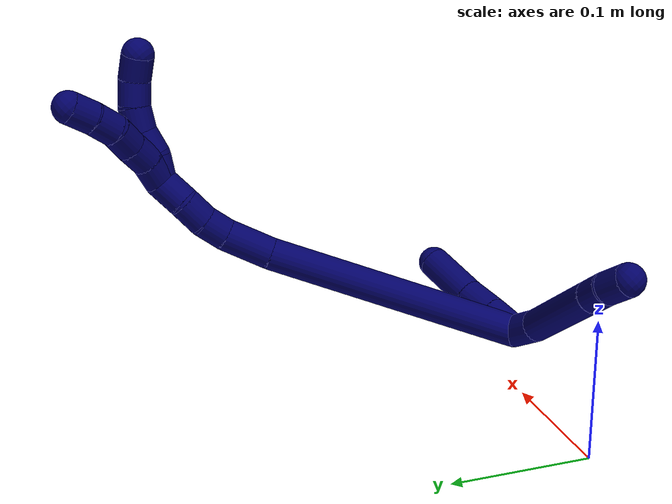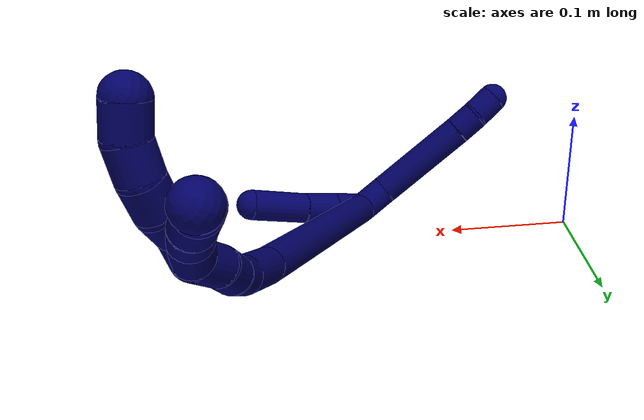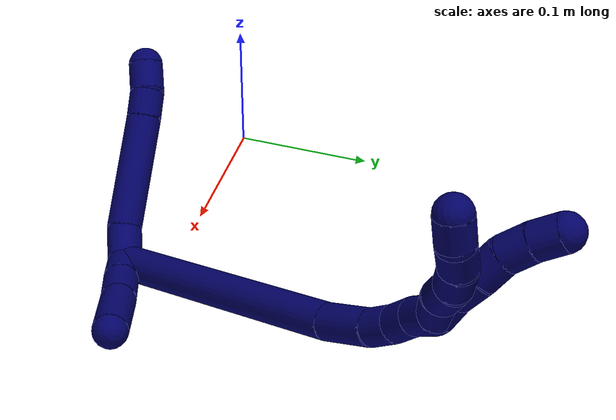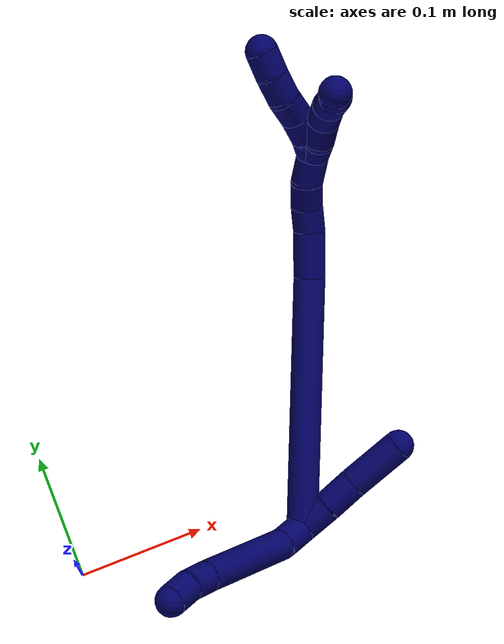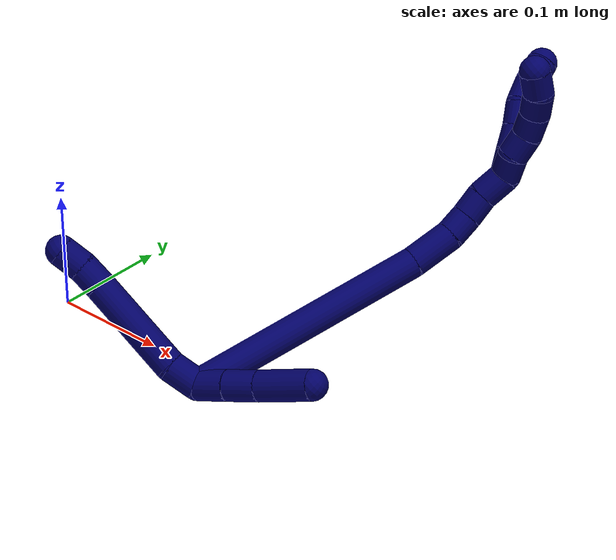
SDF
<sdf version="1.7">
 <world name="default">
  <model name="7">
   <static>0</static>
   <link name="7">
    <collision name="collision-cylinder-e_1_2_8">
     <pose>-0.007866 -0.009795 -0.002953 1.86364 -0.655453 -0.858335</pose>
     <geometry><cylinder><radius>0.0125</radius><length>0.025809</length></cylinder></geometry>
     <surface>
      <friction><ode><mu>1.16</mu><mu2>1.16</mu2><slip1>0</slip1><slip2>0</slip2></ode></friction>
      <contact><ode><kp>1e+06</kp><kd>1</kd><max_vel>0</max_vel><min_depth>0.001</min_depth></ode></contact>
     </surface>
    </collision>
    <visual name="visual-cylinder-e_1_2_8">
     <pose>-0.007866 -0.009795 -0.002953 1.86364 -0.655453 -0.858335</pose>
     <geometry><cylinder><radius>0.0125</radius><length>0.025809</length></cylinder></geometry>
     <material><ambient>0.003922 0 0.403922 1</ambient></material>
    </visual>
    <collision name="collision-cylinder-e_2_8_9">
     <pose>-0.045767 -0.047983 -0.006757 1.60072 -0.813282 -0.835253</pose>
     <geometry><cylinder><radius>0.0125</radius><length>0.082682</length></cylinder></geometry>
     <surface>
      <friction><ode><mu>1.16</mu><mu2>1.16</mu2><slip1>0</slip1><slip2>0</slip2></ode></friction>
      <contact><ode><kp>1e+06</kp><kd>1</kd><max_vel>0</max_vel><min_depth>0.001</min_depth></ode></contact>
     </surface>
    </collision>
    <visual name="visual-cylinder-e_2_8_9">
     <pose>-0.045767 -0.047983 -0.006757 1.60072 -0.813282 -0.835253</pose>
     <geometry><cylinder><radius>0.0125</radius><length>0.082682</length></cylinder></geometry>
     <material><ambient>0.003922 0 0.403922 1</ambient></material>
    </visual>
    <collision name="collision-cylinder-e_3_9_10">
     <pose>-0.082833 -0.083598 -0.007978 1.62225 -0.771219 -0.807761</pose>
     <geometry><cylinder><radius>0.0125</radius><length>0.02017</length></cylinder></geometry>
     <surface>
      <friction><ode><mu>1.16</mu><mu2>1.16</mu2><slip1>0</slip1><slip2>0</slip2></ode></friction>
      <contact><ode><kp>1e+06</kp><kd>1</kd><max_vel>0</max_vel><min_depth>0.001</min_depth></ode></contact>
     </surface>
    </collision>
    <visual name="visual-cylinder-e_3_9_10">
     <pose>-0.082833 -0.083598 -0.007978 1.62225 -0.771219 -0.807761</pose>
     <geometry><cylinder><radius>0.0125</radius><length>0.02017</length></cylinder></geometry>
     <material><ambient>0.003922 0 0.403922 1</ambient></material>
    </visual>
    <collision name="collision-cylinder-e_4_10_6">
     <pose>-0.09604 -0.099337 -0.010121 1.77578 -0.617518 -0.747343</pose>
     <geometry><cylinder><radius>0.0125</radius><length>0.021339</length></cylinder></geometry>
     <surface>
      <friction><ode><mu>1.16</mu><mu2>1.16</mu2><slip1>0</slip1><slip2>0</slip2></ode></friction>
      <contact><ode><kp>1e+06</kp><kd>1</kd><max_vel>0</max_vel><min_depth>0.001</min_depth></ode></contact>
     </surface>
    </collision>
    <visual name="visual-cylinder-e_4_10_6">
     <pose>-0.09604 -0.099337 -0.010121 1.77578 -0.617518 -0.747343</pose>
     <geometry><cylinder><radius>0.0125</radius><length>0.021339</length></cylinder></geometry>
     <material><ambient>0.003922 0 0.403922 1</ambient></material>
    </visual>
    <collision name="collision-cylinder-e_1_2_11">
     <pose>0.007798 0.003212 0.010212 -0.304677 0.629552 -0.099895</pose>
     <geometry><cylinder><radius>0.0125</radius><length>0.026489</length></cylinder></geometry>
     <surface>
      <friction><ode><mu>1.16</mu><mu2>1.16</mu2><slip1>0</slip1><slip2>0</slip2></ode></friction>
      <contact><ode><kp>1e+06</kp><kd>1</kd><max_vel>0</max_vel><min_depth>0.001</min_depth></ode></contact>
     </surface>
    </collision>
    <visual name="visual-cylinder-e_1_2_11">
     <pose>0.007798 0.003212 0.010212 -0.304677 0.629552 -0.099895</pose>
     <geometry><cylinder><radius>0.0125</radius><length>0.026489</length></cylinder></geometry>
     <material><ambient>0.003922 0 0.403922 1</ambient></material>
    </visual>
    <collision name="collision-cylinder-e_2_11_12">
     <pose>0.023356 0.01022 0.031003 -0.344587 0.604282 -0.108371</pose>
     <geometry><cylinder><radius>0.0125</radius><length>0.027316</length></cylinder></geometry>
     <surface>
      <friction><ode><mu>1.16</mu><mu2>1.16</mu2><slip1>0</slip1><slip2>0</slip2></ode></friction>
      <contact><ode><kp>1e+06</kp><kd>1</kd><max_vel>0</max_vel><min_depth>0.001</min_depth></ode></contact>
     </surface>
    </collision>
    <visual name="visual-cylinder-e_2_11_12">
     <pose>0.023356 0.01022 0.031003 -0.344587 0.604282 -0.108371</pose>
     <geometry><cylinder><radius>0.0125</radius><length>0.027316</length></cylinder></geometry>
     <material><ambient>0.003922 0 0.403922 1</ambient></material>
    </visual>
    <collision name="collision-cylinder-e_3_12_5">
     <pose>0.044496 0.01874 0.059808 -0.253615 0.617802 -0.081324</pose>
     <geometry><cylinder><radius>0.0125</radius><length>0.046195</length></cylinder></geometry>
     <surface>
      <friction><ode><mu>1.16</mu><mu2>1.16</mu2><slip1>0</slip1><slip2>0</slip2></ode></friction>
      <contact><ode><kp>1e+06</kp><kd>1</kd><max_vel>0</max_vel><min_depth>0.001</min_depth></ode></contact>
     </surface>
    </collision>
    <visual name="visual-cylinder-e_3_12_5">
     <pose>0.044496 0.01874 0.059808 -0.253615 0.617802 -0.081324</pose>
     <geometry><cylinder><radius>0.0125</radius><length>0.046195</length></cylinder></geometry>
     <material><ambient>0.003922 0 0.403922 1</ambient></material>
    </visual>
    <collision name="collision-cylinder-e_1_2_13">
     <pose>-0.018742 0.045028 0.08599 -0.48238 -0.190733 0.04705</pose>
     <geometry><cylinder><radius>0.0125</radius><length>0.197718</length></cylinder></geometry>
     <surface>
      <friction><ode><mu>1.16</mu><mu2>1.16</mu2><slip1>0</slip1><slip2>0</slip2></ode></friction>
      <contact><ode><kp>1e+06</kp><kd>1</kd><max_vel>0</max_vel><min_depth>0.001</min_depth></ode></contact>
     </surface>
    </collision>
    <visual name="visual-cylinder-e_1_2_13">
     <pose>-0.018742 0.045028 0.08599 -0.48238 -0.190733 0.04705</pose>
     <geometry><cylinder><radius>0.0125</radius><length>0.197718</length></cylinder></geometry>
     <material><ambient>0.003922 0 0.403922 1</ambient></material>
    </visual>
    <collision name="collision-cylinder-e_2_13_14">
     <pose>-0.041966 0.096616 0.188913 -0.369607 -0.24202 0.045457</pose>
     <geometry><cylinder><radius>0.0125</radius><length>0.037407</length></cylinder></geometry>
     <surface>
      <friction><ode><mu>1.16</mu><mu2>1.16</mu2><slip1>0</slip1><slip2>0</slip2></ode></friction>
      <contact><ode><kp>1e+06</kp><kd>1</kd><max_vel>0</max_vel><min_depth>0.001</min_depth></ode></contact>
     </surface>
    </collision>
    <visual name="visual-cylinder-e_2_13_14">
     <pose>-0.041966 0.096616 0.188913 -0.369607 -0.24202 0.045457</pose>
     <geometry><cylinder><radius>0.0125</radius><length>0.037407</length></cylinder></geometry>
     <material><ambient>0.003922 0 0.403922 1</ambient></material>
    </visual>
    <collision name="collision-cylinder-e_3_14_15">
     <pose>-0.049912 0.104769 0.215171 -0.169241 -0.350959 0.030076</pose>
     <geometry><cylinder><radius>0.0125</radius><length>0.02015</length></cylinder></geometry>
     <surface>
      <friction><ode><mu>1.16</mu><mu2>1.16</mu2><slip1>0</slip1><slip2>0</slip2></ode></friction>
      <contact><ode><kp>1e+06</kp><kd>1</kd><max_vel>0</max_vel><min_depth>0.001</min_depth></ode></contact>
     </surface>
    </collision>
    <visual name="visual-cylinder-e_3_14_15">
     <pose>-0.049912 0.104769 0.215171 -0.169241 -0.350959 0.030076</pose>
     <geometry><cylinder><radius>0.0125</radius><length>0.02015</length></cylinder></geometry>
     <material><ambient>0.003922 0 0.403922 1</ambient></material>
    </visual>
    <collision name="collision-cylinder-e_4_15_16">
     <pose>-0.056179 0.106101 0.234454 0.026238 -0.274294 -0.003621</pose>
     <geometry><cylinder><radius>0.0125</radius><length>0.020695</length></cylinder></geometry>
     <surface>
      <friction><ode><mu>1.16</mu><mu2>1.16</mu2><slip1>0</slip1><slip2>0</slip2></ode></friction>
      <contact><ode><kp>1e+06</kp><kd>1</kd><max_vel>0</max_vel><min_depth>0.001</min_depth></ode></contact>
     </surface>
    </collision>
    <visual name="visual-cylinder-e_4_15_16">
     <pose>-0.056179 0.106101 0.234454 0.026238 -0.274294 -0.003621</pose>
     <geometry><cylinder><radius>0.0125</radius><length>0.020695</length></cylinder></geometry>
     <material><ambient>0.003922 0 0.403922 1</ambient></material>
    </visual>
    <collision name="collision-cylinder-e_5_16_1">
     <pose>-0.059689 0.106731 0.256372 -0.074419 -0.058915 0.002194</pose>
     <geometry><cylinder><radius>0.0125</radius><length>0.02403</length></cylinder></geometry>
     <surface>
      <friction><ode><mu>1.16</mu><mu2>1.16</mu2><slip1>0</slip1><slip2>0</slip2></ode></friction>
      <contact><ode><kp>1e+06</kp><kd>1</kd><max_vel>0</max_vel><min_depth>0.001</min_depth></ode></contact>
     </surface>
    </collision>
    <visual name="visual-cylinder-e_5_16_1">
     <pose>-0.059689 0.106731 0.256372 -0.074419 -0.058915 0.002194</pose>
     <geometry><cylinder><radius>0.0125</radius><length>0.02403</length></cylinder></geometry>
     <material><ambient>0.003922 0 0.403922 1</ambient></material>
    </visual>
    <collision name="collision-cylinder-e_1_1_17">
     <pose>-0.060951 0.102243 0.276744 0.569025 -0.055464 -0.016224</pose>
     <geometry><cylinder><radius>0.0125</radius><length>0.02</length></cylinder></geometry>
     <surface>
      <friction><ode><mu>1.16</mu><mu2>1.16</mu2><slip1>0</slip1><slip2>0</slip2></ode></friction>
      <contact><ode><kp>1e+06</kp><kd>1</kd><max_vel>0</max_vel><min_depth>0.001</min_depth></ode></contact>
     </surface>
    </collision>
    <visual name="visual-cylinder-e_1_1_17">
     <pose>-0.060951 0.102243 0.276744 0.569025 -0.055464 -0.016224</pose>
     <geometry><cylinder><radius>0.0125</radius><length>0.02</length></cylinder></geometry>
     <material><ambient>0.003922 0 0.403922 1</ambient></material>
    </visual>
    <collision name="collision-cylinder-e_2_17_18">
     <pose>-0.062339 0.094287 0.294782 0.261482 -0.083508 -0.010987</pose>
     <geometry><cylinder><radius>0.0125</radius><length>0.02</length></cylinder></geometry>
     <surface>
      <friction><ode><mu>1.16</mu><mu2>1.16</mu2><slip1>0</slip1><slip2>0</slip2></ode></friction>
      <contact><ode><kp>1e+06</kp><kd>1</kd><max_vel>0</max_vel><min_depth>0.001</min_depth></ode></contact>
     </surface>
    </collision>
    <visual name="visual-cylinder-e_2_17_18">
     <pose>-0.062339 0.094287 0.294782 0.261482 -0.083508 -0.010987</pose>
     <geometry><cylinder><radius>0.0125</radius><length>0.02</length></cylinder></geometry>
     <material><ambient>0.003922 0 0.403922 1</ambient></material>
    </visual>
    <collision name="collision-cylinder-e_3_18_19">
     <pose>-0.063822 0.086423 0.312871 0.558502 -0.064911 -0.018619</pose>
     <geometry><cylinder><radius>0.0125</radius><length>0.02</length></cylinder></geometry>
     <surface>
      <friction><ode><mu>1.16</mu><mu2>1.16</mu2><slip1>0</slip1><slip2>0</slip2></ode></friction>
      <contact><ode><kp>1e+06</kp><kd>1</kd><max_vel>0</max_vel><min_depth>0.001</min_depth></ode></contact>
     </surface>
    </collision>
    <visual name="visual-cylinder-e_3_18_19">
     <pose>-0.063822 0.086423 0.312871 0.558502 -0.064911 -0.018619</pose>
     <geometry><cylinder><radius>0.0125</radius><length>0.02</length></cylinder></geometry>
     <material><ambient>0.003922 0 0.403922 1</ambient></material>
    </visual>
    <collision name="collision-cylinder-e_4_19_20">
     <pose>-0.064222 0.073988 0.328323 0.796557 0.024877 0.010468</pose>
     <geometry><cylinder><radius>0.0125</radius><length>0.02</length></cylinder></geometry>
     <surface>
      <friction><ode><mu>1.16</mu><mu2>1.16</mu2><slip1>0</slip1><slip2>0</slip2></ode></friction>
      <contact><ode><kp>1e+06</kp><kd>1</kd><max_vel>0</max_vel><min_depth>0.001</min_depth></ode></contact>
     </surface>
    </collision>
    <visual name="visual-cylinder-e_4_19_20">
     <pose>-0.064222 0.073988 0.328323 0.796557 0.024877 0.010468</pose>
     <geometry><cylinder><radius>0.0125</radius><length>0.02</length></cylinder></geometry>
     <material><ambient>0.003922 0 0.403922 1</ambient></material>
    </visual>
    <collision name="collision-cylinder-e_5_20_4">
     <pose>-0.066003 0.058575 0.340562 1.00495 -0.204426 -0.11261</pose>
     <geometry><cylinder><radius>0.0125</radius><length>0.02</length></cylinder></geometry>
     <surface>
      <friction><ode><mu>1.16</mu><mu2>1.16</mu2><slip1>0</slip1><slip2>0</slip2></ode></friction>
      <contact><ode><kp>1e+06</kp><kd>1</kd><max_vel>0</max_vel><min_depth>0.001</min_depth></ode></contact>
     </surface>
    </collision>
    <visual name="visual-cylinder-e_5_20_4">
     <pose>-0.066003 0.058575 0.340562 1.00495 -0.204426 -0.11261</pose>
     <geometry><cylinder><radius>0.0125</radius><length>0.02</length></cylinder></geometry>
     <material><ambient>0.003922 0 0.403922 1</ambient></material>
    </visual>
    <collision name="collision-cylinder-e_1_1_21">
     <pose>-0.065216 0.104353 0.276462 0.38245 -0.502891 -0.099378</pose>
     <geometry><cylinder><radius>0.0125</radius><length>0.02</length></cylinder></geometry>
     <surface>
      <friction><ode><mu>1.16</mu><mu2>1.16</mu2><slip1>0</slip1><slip2>0</slip2></ode></friction>
      <contact><ode><kp>1e+06</kp><kd>1</kd><max_vel>0</max_vel><min_depth>0.001</min_depth></ode></contact>
     </surface>
    </collision>
    <visual name="visual-cylinder-e_1_1_21">
     <pose>-0.065216 0.104353 0.276462 0.38245 -0.502891 -0.099378</pose>
     <geometry><cylinder><radius>0.0125</radius><length>0.02</length></cylinder></geometry>
     <material><ambient>0.003922 0 0.403922 1</ambient></material>
    </visual>
    <collision name="collision-cylinder-e_2_21_22">
     <pose>-0.076419 0.099719 0.292166 0.178251 -0.692299 -0.064438</pose>
     <geometry><cylinder><radius>0.0125</radius><length>0.02</length></cylinder></geometry>
     <surface>
      <friction><ode><mu>1.16</mu><mu2>1.16</mu2><slip1>0</slip1><slip2>0</slip2></ode></friction>
      <contact><ode><kp>1e+06</kp><kd>1</kd><max_vel>0</max_vel><min_depth>0.001</min_depth></ode></contact>
     </surface>
    </collision>
    <visual name="visual-cylinder-e_2_21_22">
     <pose>-0.076419 0.099719 0.292166 0.178251 -0.692299 -0.064438</pose>
     <geometry><cylinder><radius>0.0125</radius><length>0.02</length></cylinder></geometry>
     <material><ambient>0.003922 0 0.403922 1</ambient></material>
    </visual>
    <collision name="collision-cylinder-e_3_22_23">
     <pose>-0.089631 0.096163 0.306711 0.30453 -0.7518 -0.120978</pose>
     <geometry><cylinder><radius>0.0125</radius><length>0.02</length></cylinder></geometry>
     <surface>
      <friction><ode><mu>1.16</mu><mu2>1.16</mu2><slip1>0</slip1><slip2>0</slip2></ode></friction>
      <contact><ode><kp>1e+06</kp><kd>1</kd><max_vel>0</max_vel><min_depth>0.001</min_depth></ode></contact>
     </surface>
    </collision>
    <visual name="visual-cylinder-e_3_22_23">
     <pose>-0.089631 0.096163 0.306711 0.30453 -0.7518 -0.120978</pose>
     <geometry><cylinder><radius>0.0125</radius><length>0.02</length></cylinder></geometry>
     <material><ambient>0.003922 0 0.403922 1</ambient></material>
    </visual>
    <collision name="collision-cylinder-e_4_23_24">
     <pose>-0.102935 0.094598 0.321275 -0.082075 -0.704165 0.030168</pose>
     <geometry><cylinder><radius>0.0125</radius><length>0.02</length></cylinder></geometry>
     <surface>
      <friction><ode><mu>1.16</mu><mu2>1.16</mu2><slip1>0</slip1><slip2>0</slip2></ode></friction>
      <contact><ode><kp>1e+06</kp><kd>1</kd><max_vel>0</max_vel><min_depth>0.001</min_depth></ode></contact>
     </surface>
    </collision>
    <visual name="visual-cylinder-e_4_23_24">
     <pose>-0.102935 0.094598 0.321275 -0.082075 -0.704165 0.030168</pose>
     <geometry><cylinder><radius>0.0125</radius><length>0.02</length></cylinder></geometry>
     <material><ambient>0.003922 0 0.403922 1</ambient></material>
    </visual>
    <collision name="collision-cylinder-e_5_24_3">
     <pose>-0.115445 0.097093 0.336621 -0.236824 -0.647995 0.079864</pose>
     <geometry><cylinder><radius>0.0125</radius><length>0.02</length></cylinder></geometry>
     <surface>
      <friction><ode><mu>1.16</mu><mu2>1.16</mu2><slip1>0</slip1><slip2>0</slip2></ode></friction>
      <contact><ode><kp>1e+06</kp><kd>1</kd><max_vel>0</max_vel><min_depth>0.001</min_depth></ode></contact>
     </surface>
    </collision>
    <visual name="visual-cylinder-e_5_24_3">
     <pose>-0.115445 0.097093 0.336621 -0.236824 -0.647995 0.079864</pose>
     <geometry><cylinder><radius>0.0125</radius><length>0.02</length></cylinder></geometry>
     <material><ambient>0.003922 0 0.403922 1</ambient></material>
    </visual>
    <collision name="collision-sphere-3">
     <pose>-0.121481 0.098964 0.344372 0 -0 0</pose>
     <geometry><sphere><radius>0.0125</radius></sphere></geometry>
     <surface>
      <friction><ode><mu>1.16</mu><mu2>1.16</mu2><slip1>0</slip1><slip2>0</slip2></ode></friction>
      <contact><ode><kp>1e+06</kp><kd>1</kd><max_vel>0</max_vel><min_depth>0.001</min_depth></ode></contact>
     </surface>
    </collision>
    <visual name="visual-sphere-3">
     <pose>-0.121481 0.098964 0.344372 0 -0 0</pose>
     <geometry><sphere><radius>0.0125</radius></sphere></geometry>
     <material><ambient>0.003922 0 0.403922 1</ambient></material>
    </visual>
    <collision name="collision-sphere-24">
     <pose>-0.109409 0.095223 0.328871 0 -0 0</pose>
     <geometry><sphere><radius>0.0125</radius></sphere></geometry>
     <surface>
      <friction><ode><mu>1.16</mu><mu2>1.16</mu2><slip1>0</slip1><slip2>0</slip2></ode></friction>
      <contact><ode><kp>1e+06</kp><kd>1</kd><max_vel>0</max_vel><min_depth>0.001</min_depth></ode></contact>
     </surface>
    </collision>
    <visual name="visual-sphere-24">
     <pose>-0.109409 0.095223 0.328871 0 -0 0</pose>
     <geometry><sphere><radius>0.0125</radius></sphere></geometry>
     <material><ambient>0.003922 0 0.403922 1</ambient></material>
    </visual>
    <collision name="collision-sphere-23">
     <pose>-0.096461 0.093973 0.313679 0 -0 0</pose>
     <geometry><sphere><radius>0.0125</radius></sphere></geometry>
     <surface>
      <friction><ode><mu>1.16</mu><mu2>1.16</mu2><slip1>0</slip1><slip2>0</slip2></ode></friction>
      <contact><ode><kp>1e+06</kp><kd>1</kd><max_vel>0</max_vel><min_depth>0.001</min_depth></ode></contact>
     </surface>
    </collision>
    <visual name="visual-sphere-23">
     <pose>-0.096461 0.093973 0.313679 0 -0 0</pose>
     <geometry><sphere><radius>0.0125</radius></sphere></geometry>
     <material><ambient>0.003922 0 0.403922 1</ambient></material>
    </visual>
    <collision name="collision-sphere-22">
     <pose>-0.082802 0.098354 0.299742 0 -0 0</pose>
     <geometry><sphere><radius>0.0125</radius></sphere></geometry>
     <surface>
      <friction><ode><mu>1.16</mu><mu2>1.16</mu2><slip1>0</slip1><slip2>0</slip2></ode></friction>
      <contact><ode><kp>1e+06</kp><kd>1</kd><max_vel>0</max_vel><min_depth>0.001</min_depth></ode></contact>
     </surface>
    </collision>
    <visual name="visual-sphere-22">
     <pose>-0.082802 0.098354 0.299742 0 -0 0</pose>
     <geometry><sphere><radius>0.0125</radius></sphere></geometry>
     <material><ambient>0.003922 0 0.403922 1</ambient></material>
    </visual>
    <collision name="collision-sphere-21">
     <pose>-0.070036 0.101083 0.284591 0 -0 0</pose>
     <geometry><sphere><radius>0.0125</radius></sphere></geometry>
     <surface>
      <friction><ode><mu>1.16</mu><mu2>1.16</mu2><slip1>0</slip1><slip2>0</slip2></ode></friction>
      <contact><ode><kp>1e+06</kp><kd>1</kd><max_vel>0</max_vel><min_depth>0.001</min_depth></ode></contact>
     </surface>
    </collision>
    <visual name="visual-sphere-21">
     <pose>-0.070036 0.101083 0.284591 0 -0 0</pose>
     <geometry><sphere><radius>0.0125</radius></sphere></geometry>
     <material><ambient>0.003922 0 0.403922 1</ambient></material>
    </visual>
    <collision name="collision-sphere-4">
     <pose>-0.068033 0.050309 0.345812 0 -0 0</pose>
     <geometry><sphere><radius>0.0125</radius></sphere></geometry>
     <surface>
      <friction><ode><mu>1.16</mu><mu2>1.16</mu2><slip1>0</slip1><slip2>0</slip2></ode></friction>
      <contact><ode><kp>1e+06</kp><kd>1</kd><max_vel>0</max_vel><min_depth>0.001</min_depth></ode></contact>
     </surface>
    </collision>
    <visual name="visual-sphere-4">
     <pose>-0.068033 0.050309 0.345812 0 -0 0</pose>
     <geometry><sphere><radius>0.0125</radius></sphere></geometry>
     <material><ambient>0.003922 0 0.403922 1</ambient></material>
    </visual>
    <collision name="collision-sphere-20">
     <pose>-0.063973 0.066841 0.335313 0 -0 0</pose>
     <geometry><sphere><radius>0.0125</radius></sphere></geometry>
     <surface>
      <friction><ode><mu>1.16</mu><mu2>1.16</mu2><slip1>0</slip1><slip2>0</slip2></ode></friction>
      <contact><ode><kp>1e+06</kp><kd>1</kd><max_vel>0</max_vel><min_depth>0.001</min_depth></ode></contact>
     </surface>
    </collision>
    <visual name="visual-sphere-20">
     <pose>-0.063973 0.066841 0.335313 0 -0 0</pose>
     <geometry><sphere><radius>0.0125</radius></sphere></geometry>
     <material><ambient>0.003922 0 0.403922 1</ambient></material>
    </visual>
    <collision name="collision-sphere-11">
     <pose>0.015596 0.006423 0.020425 0 -0 0</pose>
     <geometry><sphere><radius>0.0125</radius></sphere></geometry>
     <surface>
      <friction><ode><mu>1.16</mu><mu2>1.16</mu2><slip1>0</slip1><slip2>0</slip2></ode></friction>
      <contact><ode><kp>1e+06</kp><kd>1</kd><max_vel>0</max_vel><min_depth>0.001</min_depth></ode></contact>
     </surface>
    </collision>
    <visual name="visual-sphere-11">
     <pose>0.015596 0.006423 0.020425 0 -0 0</pose>
     <geometry><sphere><radius>0.0125</radius></sphere></geometry>
     <material><ambient>0.003922 0 0.403922 1</ambient></material>
    </visual>
    <collision name="collision-sphere-6">
     <pose>-0.102218 -0.107854 -0.011892 0 -0 0</pose>
     <geometry><sphere><radius>0.0125</radius></sphere></geometry>
     <surface>
      <friction><ode><mu>1.16</mu><mu2>1.16</mu2><slip1>0</slip1><slip2>0</slip2></ode></friction>
      <contact><ode><kp>1e+06</kp><kd>1</kd><max_vel>0</max_vel><min_depth>0.001</min_depth></ode></contact>
     </surface>
    </collision>
    <visual name="visual-sphere-6">
     <pose>-0.102218 -0.107854 -0.011892 0 -0 0</pose>
     <geometry><sphere><radius>0.0125</radius></sphere></geometry>
     <material><ambient>0.003922 0 0.403922 1</ambient></material>
    </visual>
    <collision name="collision-sphere-10">
     <pose>-0.089862 -0.09082 -0.00835 0 -0 0</pose>
     <geometry><sphere><radius>0.0125</radius></sphere></geometry>
     <surface>
      <friction><ode><mu>1.16</mu><mu2>1.16</mu2><slip1>0</slip1><slip2>0</slip2></ode></friction>
      <contact><ode><kp>1e+06</kp><kd>1</kd><max_vel>0</max_vel><min_depth>0.001</min_depth></ode></contact>
     </surface>
    </collision>
    <visual name="visual-sphere-10">
     <pose>-0.089862 -0.09082 -0.00835 0 -0 0</pose>
     <geometry><sphere><radius>0.0125</radius></sphere></geometry>
     <material><ambient>0.003922 0 0.403922 1</ambient></material>
    </visual>
    <collision name="collision-sphere-9">
     <pose>-0.075804 -0.076377 -0.007607 0 -0 0</pose>
     <geometry><sphere><radius>0.0125</radius></sphere></geometry>
     <surface>
      <friction><ode><mu>1.16</mu><mu2>1.16</mu2><slip1>0</slip1><slip2>0</slip2></ode></friction>
      <contact><ode><kp>1e+06</kp><kd>1</kd><max_vel>0</max_vel><min_depth>0.001</min_depth></ode></contact>
     </surface>
    </collision>
    <visual name="visual-sphere-9">
     <pose>-0.075804 -0.076377 -0.007607 0 -0 0</pose>
     <geometry><sphere><radius>0.0125</radius></sphere></geometry>
     <material><ambient>0.003922 0 0.403922 1</ambient></material>
    </visual>
    <collision name="collision-sphere-2">
     <geometry><sphere><radius>0.0125</radius></sphere></geometry>
     <surface>
      <friction><ode><mu>1.16</mu><mu2>1.16</mu2><slip1>0</slip1><slip2>0</slip2></ode></friction>
      <contact><ode><kp>1e+06</kp><kd>1</kd><max_vel>0</max_vel><min_depth>0.001</min_depth></ode></contact>
     </surface>
    </collision>
    <visual name="visual-sphere-2">
     <geometry><sphere><radius>0.0125</radius></sphere></geometry>
     <material><ambient>0.003922 0 0.403922 1</ambient></material>
    </visual>
    <collision name="collision-sphere-19">
     <pose>-0.064471 0.081135 0.321334 0 -0 0</pose>
     <geometry><sphere><radius>0.0125</radius></sphere></geometry>
     <surface>
      <friction><ode><mu>1.16</mu><mu2>1.16</mu2><slip1>0</slip1><slip2>0</slip2></ode></friction>
      <contact><ode><kp>1e+06</kp><kd>1</kd><max_vel>0</max_vel><min_depth>0.001</min_depth></ode></contact>
     </surface>
    </collision>
    <visual name="visual-sphere-19">
     <pose>-0.064471 0.081135 0.321334 0 -0 0</pose>
     <geometry><sphere><radius>0.0125</radius></sphere></geometry>
     <material><ambient>0.003922 0 0.403922 1</ambient></material>
    </visual>
    <collision name="collision-sphere-8">
     <pose>-0.015731 -0.01959 -0.005906 0 -0 0</pose>
     <geometry><sphere><radius>0.0125</radius></sphere></geometry>
     <surface>
      <friction><ode><mu>1.16</mu><mu2>1.16</mu2><slip1>0</slip1><slip2>0</slip2></ode></friction>
      <contact><ode><kp>1e+06</kp><kd>1</kd><max_vel>0</max_vel><min_depth>0.001</min_depth></ode></contact>
     </surface>
    </collision>
    <visual name="visual-sphere-8">
     <pose>-0.015731 -0.01959 -0.005906 0 -0 0</pose>
     <geometry><sphere><radius>0.0125</radius></sphere></geometry>
     <material><ambient>0.003922 0 0.403922 1</ambient></material>
    </visual>
    <collision name="collision-sphere-12">
     <pose>0.031116 0.014016 0.041582 0 -0 0</pose>
     <geometry><sphere><radius>0.0125</radius></sphere></geometry>
     <surface>
      <friction><ode><mu>1.16</mu><mu2>1.16</mu2><slip1>0</slip1><slip2>0</slip2></ode></friction>
      <contact><ode><kp>1e+06</kp><kd>1</kd><max_vel>0</max_vel><min_depth>0.001</min_depth></ode></contact>
     </surface>
    </collision>
    <visual name="visual-sphere-12">
     <pose>0.031116 0.014016 0.041582 0 -0 0</pose>
     <geometry><sphere><radius>0.0125</radius></sphere></geometry>
     <material><ambient>0.003922 0 0.403922 1</ambient></material>
    </visual>
    <collision name="collision-sphere-5">
     <pose>0.057875 0.023464 0.078033 0 -0 0</pose>
     <geometry><sphere><radius>0.0125</radius></sphere></geometry>
     <surface>
      <friction><ode><mu>1.16</mu><mu2>1.16</mu2><slip1>0</slip1><slip2>0</slip2></ode></friction>
      <contact><ode><kp>1e+06</kp><kd>1</kd><max_vel>0</max_vel><min_depth>0.001</min_depth></ode></contact>
     </surface>
    </collision>
    <visual name="visual-sphere-5">
     <pose>0.057875 0.023464 0.078033 0 -0 0</pose>
     <geometry><sphere><radius>0.0125</radius></sphere></geometry>
     <material><ambient>0.003922 0 0.403922 1</ambient></material>
    </visual>
    <collision name="collision-sphere-13">
     <pose>-0.037483 0.090056 0.17198 0 -0 0</pose>
     <geometry><sphere><radius>0.0125</radius></sphere></geometry>
     <surface>
      <friction><ode><mu>1.16</mu><mu2>1.16</mu2><slip1>0</slip1><slip2>0</slip2></ode></friction>
      <contact><ode><kp>1e+06</kp><kd>1</kd><max_vel>0</max_vel><min_depth>0.001</min_depth></ode></contact>
     </surface>
    </collision>
    <visual name="visual-sphere-13">
     <pose>-0.037483 0.090056 0.17198 0 -0 0</pose>
     <geometry><sphere><radius>0.0125</radius></sphere></geometry>
     <material><ambient>0.003922 0 0.403922 1</ambient></material>
    </visual>
    <collision name="collision-sphere-14">
     <pose>-0.046448 0.103175 0.205845 0 -0 0</pose>
     <geometry><sphere><radius>0.0125</radius></sphere></geometry>
     <surface>
      <friction><ode><mu>1.16</mu><mu2>1.16</mu2><slip1>0</slip1><slip2>0</slip2></ode></friction>
      <contact><ode><kp>1e+06</kp><kd>1</kd><max_vel>0</max_vel><min_depth>0.001</min_depth></ode></contact>
     </surface>
    </collision>
    <visual name="visual-sphere-14">
     <pose>-0.046448 0.103175 0.205845 0 -0 0</pose>
     <geometry><sphere><radius>0.0125</radius></sphere></geometry>
     <material><ambient>0.003922 0 0.403922 1</ambient></material>
    </visual>
    <collision name="collision-sphere-15">
     <pose>-0.053376 0.106362 0.224496 0 -0 0</pose>
     <geometry><sphere><radius>0.0125</radius></sphere></geometry>
     <surface>
      <friction><ode><mu>1.16</mu><mu2>1.16</mu2><slip1>0</slip1><slip2>0</slip2></ode></friction>
      <contact><ode><kp>1e+06</kp><kd>1</kd><max_vel>0</max_vel><min_depth>0.001</min_depth></ode></contact>
     </surface>
    </collision>
    <visual name="visual-sphere-15">
     <pose>-0.053376 0.106362 0.224496 0 -0 0</pose>
     <geometry><sphere><radius>0.0125</radius></sphere></geometry>
     <material><ambient>0.003922 0 0.403922 1</ambient></material>
    </visual>
    <collision name="collision-sphere-16">
     <pose>-0.058982 0.10584 0.244411 0 -0 0</pose>
     <geometry><sphere><radius>0.0125</radius></sphere></geometry>
     <surface>
      <friction><ode><mu>1.16</mu><mu2>1.16</mu2><slip1>0</slip1><slip2>0</slip2></ode></friction>
      <contact><ode><kp>1e+06</kp><kd>1</kd><max_vel>0</max_vel><min_depth>0.001</min_depth></ode></contact>
     </surface>
    </collision>
    <visual name="visual-sphere-16">
     <pose>-0.058982 0.10584 0.244411 0 -0 0</pose>
     <geometry><sphere><radius>0.0125</radius></sphere></geometry>
     <material><ambient>0.003922 0 0.403922 1</ambient></material>
    </visual>
    <collision name="collision-sphere-1">
     <pose>-0.060396 0.107623 0.268333 0 -0 0</pose>
     <geometry><sphere><radius>0.0125</radius></sphere></geometry>
     <surface>
      <friction><ode><mu>1.16</mu><mu2>1.16</mu2><slip1>0</slip1><slip2>0</slip2></ode></friction>
      <contact><ode><kp>1e+06</kp><kd>1</kd><max_vel>0</max_vel><min_depth>0.001</min_depth></ode></contact>
     </surface>
    </collision>
    <visual name="visual-sphere-1">
     <pose>-0.060396 0.107623 0.268333 0 -0 0</pose>
     <geometry><sphere><radius>0.0125</radius></sphere></geometry>
     <material><ambient>0.003922 0 0.403922 1</ambient></material>
    </visual>
    <collision name="collision-sphere-18">
     <pose>-0.063173 0.091711 0.304408 0 -0 0</pose>
     <geometry><sphere><radius>0.0125</radius></sphere></geometry>
     <surface>
      <friction><ode><mu>1.16</mu><mu2>1.16</mu2><slip1>0</slip1><slip2>0</slip2></ode></friction>
      <contact><ode><kp>1e+06</kp><kd>1</kd><max_vel>0</max_vel><min_depth>0.001</min_depth></ode></contact>
     </surface>
    </collision>
    <visual name="visual-sphere-18">
     <pose>-0.063173 0.091711 0.304408 0 -0 0</pose>
     <geometry><sphere><radius>0.0125</radius></sphere></geometry>
     <material><ambient>0.003922 0 0.403922 1</ambient></material>
    </visual>
    <collision name="collision-sphere-17">
     <pose>-0.061505 0.096864 0.285155 0 -0 0</pose>
     <geometry><sphere><radius>0.0125</radius></sphere></geometry>
     <surface>
      <friction><ode><mu>1.16</mu><mu2>1.16</mu2><slip1>0</slip1><slip2>0</slip2></ode></friction>
      <contact><ode><kp>1e+06</kp><kd>1</kd><max_vel>0</max_vel><min_depth>0.001</min_depth></ode></contact>
     </surface>
    </collision>
    <visual name="visual-sphere-17">
     <pose>-0.061505 0.096864 0.285155 0 -0 0</pose>
     <geometry><sphere><radius>0.0125</radius></sphere></geometry>
     <material><ambient>0.003922 0 0.403922 1</ambient></material>
    </visual>
    <inertial>
     <pose>-0.0387 0.040988 0.138688 0 -0 0</pose>
     <mass>0.75</mass>
     <inertia>
      <ixx>0.000688</ixx>
      <ixy>0</ixy>
      <ixz>0</ixz>
      <iyy>0.000642</iyy>
      <iyz>0</iyz>
      <izz>-5.9e-05</izz>
     </inertia>
    </inertial>
   </link>
   <pose>0.175256 -0.029289 0.011795 -0.804839 0.178861 -0.546363</pose>
  </model>
 </world>
</sdf>
